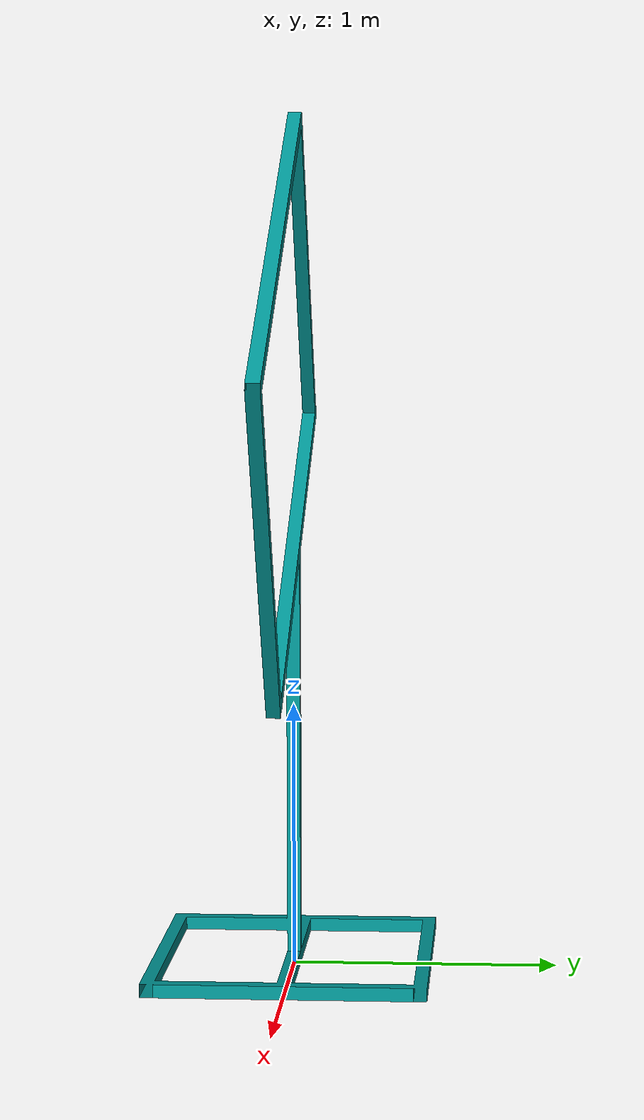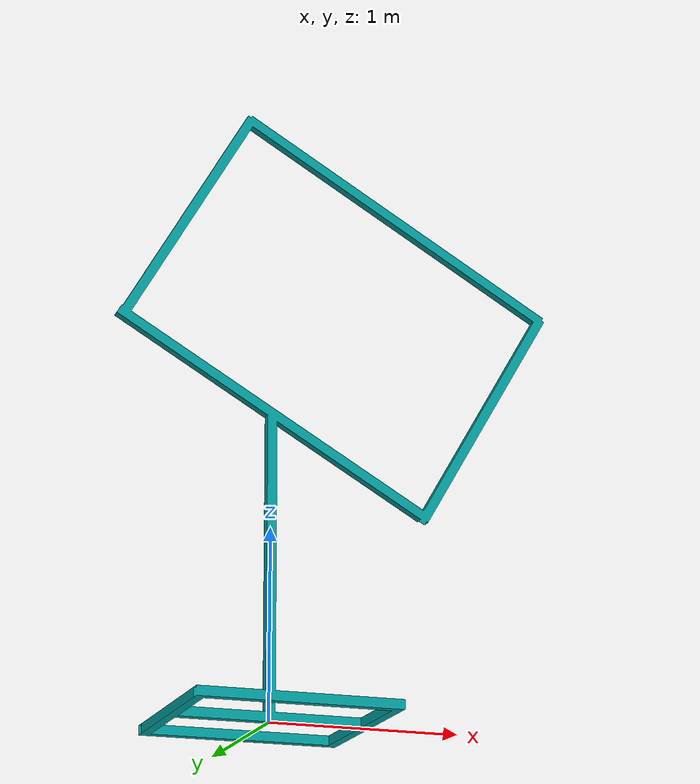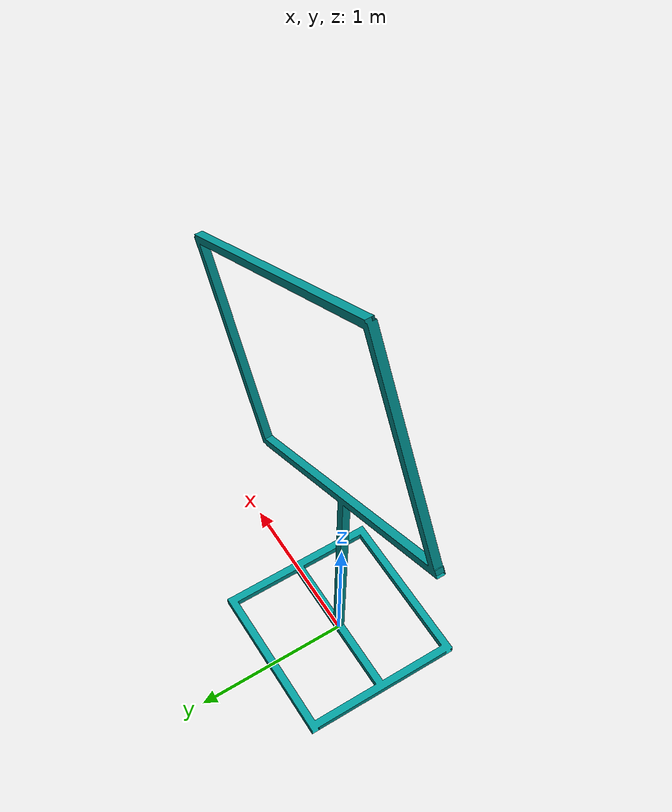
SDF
<?xml version='1.0'?>
<sdf version='1.4'>
  <model name="dronerace_gate_1">
    <static>true</static>
    <pose>0 0 0 0 0 0</pose>

    <link name="dronerace_gate_1">
      <visual name="gate">
        <geometry>
          <mesh>
            <uri>model://dronerace_gate_1/normal_gate_1.dae</uri>
          </mesh>
        </geometry>
      </visual>
      <collision name="gate_collision">
        <geometry>
          <mesh>
            <uri>model://dronerace_gate_1/normal_gate_1.dae</uri>
          </mesh>
        </geometry>
      </collision>
    </link>

  </model>
</sdf>
